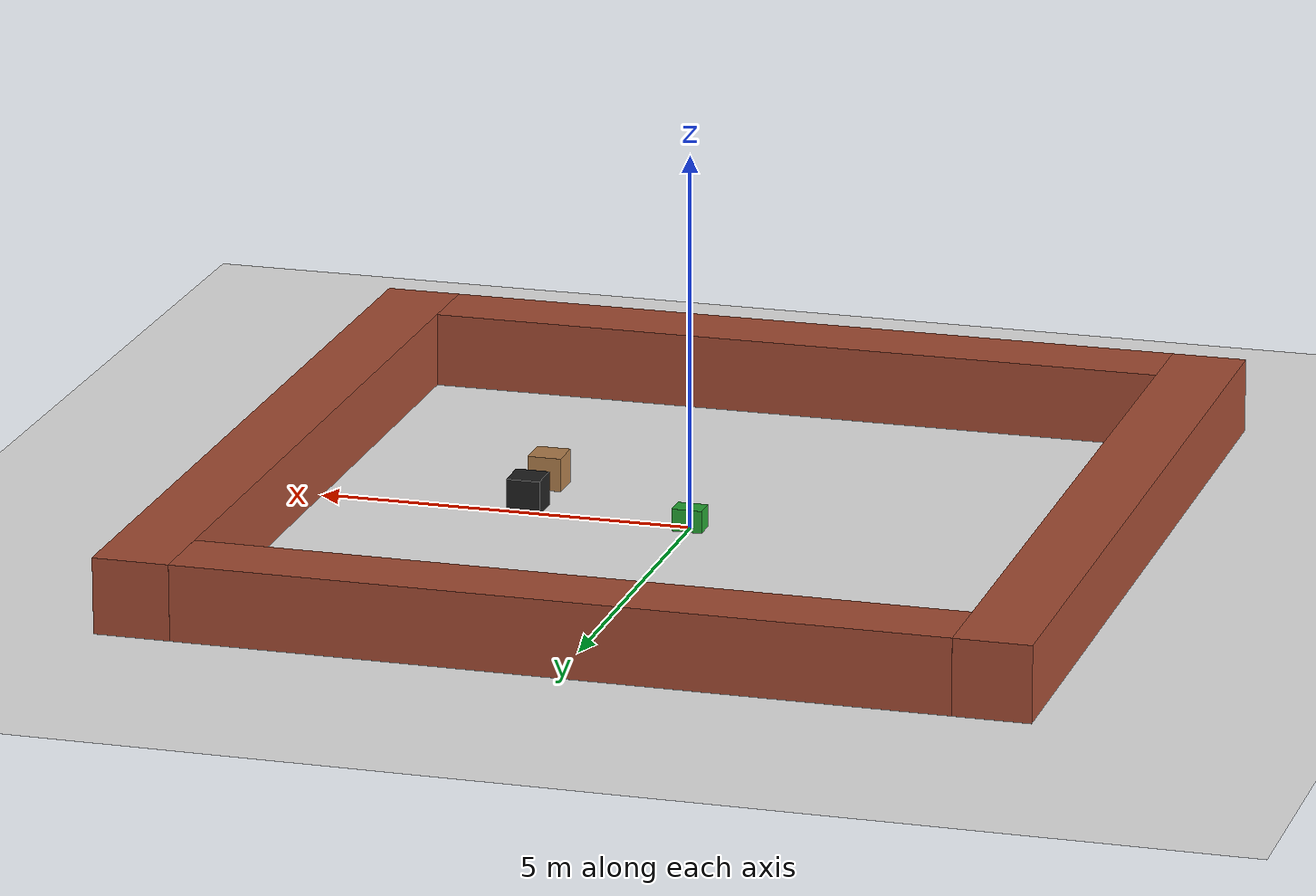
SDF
<sdf version="1.7">
 <world name="default">
  <light name="sun" type="directional">
   <pose>0 0 10 0 -0 0</pose>
   <diffuse>0.8 0.8 0.8 1</diffuse>
   <specular>1 1 1 1</specular>
   <attenuation>
    <range>1000</range>
    <constant>0.9</constant>
    <linear>0.01</linear>
    <quadratic>0.001</quadratic>
   </attenuation>
   <direction>-0.01 -0.01 -1</direction>
   <spot><inner_angle>0</inner_angle><outer_angle>0</outer_angle><falloff>0</falloff></spot>
  </light>
  <model name="ground_plane">
   <static>1</static>
   <link name="link">
    <collision name="collision">
     <geometry><plane><normal>0 0 1</normal><size>100 100</size></plane></geometry>
     <surface>
      <contact><collide_bitmask>65535</collide_bitmask></contact>
      <friction><ode><mu>100</mu><mu2>50</mu2></ode></friction>
     </surface>
    </collision>
    <visual name="visual">
     <cast_shadows>0</cast_shadows>
     <geometry><plane><normal>0 0 1</normal><size>100 100</size></plane></geometry>
     <material>
      <script><uri>file://media/materials/scripts/gazebo.material</uri><name>Gazebo/White</name></script>
     </material>
    </visual>
   </link>
  </model>
  <gravity>0 0 -9.8</gravity>
  <magnetic_field>6e-06 2.3e-05 -4.2e-05</magnetic_field>
  <atmosphere type="adiabatic"/>
  <physics type="ode">
   <max_step_size>0.001</max_step_size>
   <real_time_factor>1</real_time_factor>
   <real_time_update_rate>1000</real_time_update_rate>
  </physics>
  <scene><ambient>0.4 0.4 0.4 1</ambient><background>0.7 0.7 0.7 1</background><shadows>1</shadows></scene>
  <spherical_coordinates>
   <surface_model>EARTH_WGS84</surface_model>
   <latitude_deg>0</latitude_deg>
   <longitude_deg>0</longitude_deg>
   <elevation>0</elevation>
   <heading_deg>0</heading_deg>
  </spherical_coordinates>
  <model name="wall12">
   <link name="link_0">
    <inertial>
     <mass>12</mass>
     <inertia><ixx>145</ixx><ixy>0</ixy><ixz>0</ixz><iyy>145</iyy><iyz>0</iyz><izz>1.66667</izz></inertia>
    </inertial>
    <visual name="visual">
     <geometry><box><size>12 1 1</size></box></geometry>
     <material>
      <lighting>1</lighting>
      <script><uri>file://media/materials/scripts/gazebo.material</uri><name>Gazebo/Bricks</name></script>
      <shader type="pixel"><normal_map>__default__</normal_map></shader>
      <ambient>0.7 0.7 0.7 1</ambient>
      <diffuse>0.7 0.7 0.7 1</diffuse>
      <specular>0.01 0.01 0.01 1</specular>
      <emissive>0 0 0 1</emissive>
     </material>
    </visual>
    <collision name="collision">
     <geometry><box><size>12 1 1</size></box></geometry>
     <surface>
      <friction>
       <ode><mu>1</mu><mu2>1</mu2><fdir1>0 0 0</fdir1><slip1>0</slip1><slip2>0</slip2></ode>
       <torsional>
        <coefficient>1</coefficient>
        <patch_radius>0</patch_radius>
        <surface_radius>0</surface_radius>
        <use_patch_radius>1</use_patch_radius>
        <ode><slip>0</slip></ode>
       </torsional>
      </friction>
      <bounce><restitution_coefficient>0</restitution_coefficient><threshold>1e+06</threshold></bounce>
      <contact>
       <collide_without_contact>0</collide_without_contact>
       <collide_without_contact_bitmask>1</collide_without_contact_bitmask>
       <collide_bitmask>1</collide_bitmask>
       <ode>
        <soft_cfm>0</soft_cfm>
        <soft_erp>0.2</soft_erp>
        <kp>1e+13</kp>
        <kd>1</kd>
        <max_vel>0.01</max_vel>
        <min_depth>0</min_depth>
       </ode>
       <bullet>
        <split_impulse>1</split_impulse>
        <split_impulse_penetration_threshold>-0.01</split_impulse_penetration_threshold>
        <soft_cfm>0</soft_cfm>
        <soft_erp>0.2</soft_erp>
        <kp>1e+13</kp>
        <kd>1</kd>
       </bullet>
      </contact>
     </surface>
    </collision>
   </link>
   <static>0</static>
   <pose>5.50026 -1.8e-05 0.499987 0 -2e-06 1.57075</pose>
  </model>
  <model name="wall12_0">
   <link name="link_0">
    <inertial>
     <mass>12</mass>
     <inertia><ixx>145</ixx><ixy>0</ixy><ixz>0</ixz><iyy>145</iyy><iyz>0</iyz><izz>1.66667</izz></inertia>
    </inertial>
    <visual name="visual">
     <geometry><box><size>12 1 1</size></box></geometry>
     <material>
      <lighting>1</lighting>
      <script><uri>file://media/materials/scripts/gazebo.material</uri><name>Gazebo/Bricks</name></script>
      <shader type="pixel"><normal_map>__default__</normal_map></shader>
      <ambient>0.7 0.7 0.7 1</ambient>
      <diffuse>0.7 0.7 0.7 1</diffuse>
      <specular>0.01 0.01 0.01 1</specular>
      <emissive>0 0 0 1</emissive>
     </material>
    </visual>
    <collision name="collision">
     <geometry><box><size>12 1 1</size></box></geometry>
     <surface>
      <friction>
       <ode><mu>1</mu><mu2>1</mu2><fdir1>0 0 0</fdir1><slip1>0</slip1><slip2>0</slip2></ode>
       <torsional>
        <coefficient>1</coefficient>
        <patch_radius>0</patch_radius>
        <surface_radius>0</surface_radius>
        <use_patch_radius>1</use_patch_radius>
        <ode><slip>0</slip></ode>
       </torsional>
      </friction>
      <bounce><restitution_coefficient>0</restitution_coefficient><threshold>1e+06</threshold></bounce>
      <contact>
       <collide_without_contact>0</collide_without_contact>
       <collide_without_contact_bitmask>1</collide_without_contact_bitmask>
       <collide_bitmask>1</collide_bitmask>
       <ode>
        <soft_cfm>0</soft_cfm>
        <soft_erp>0.2</soft_erp>
        <kp>1e+13</kp>
        <kd>1</kd>
        <max_vel>0.01</max_vel>
        <min_depth>0</min_depth>
       </ode>
       <bullet>
        <split_impulse>1</split_impulse>
        <split_impulse_penetration_threshold>-0.01</split_impulse_penetration_threshold>
        <soft_cfm>0</soft_cfm>
        <soft_erp>0.2</soft_erp>
        <kp>1e+13</kp>
        <kd>1</kd>
       </bullet>
      </contact>
     </surface>
    </collision>
   </link>
   <static>0</static>
   <pose>-5.50034 3.6e-05 0.499987 0 2e-06 1.57085</pose>
  </model>
  <model name="wall10">
   <link name="link_0">
    <inertial>
     <mass>10</mass>
     <inertia><ixx>84.1667</ixx><ixy>0</ixy><ixz>0</ixz><iyy>84.1667</iyy><iyz>0</iyz><izz>1.66667</izz></inertia>
    </inertial>
    <visual name="visual">
     <geometry><box><size>10 1 1</size></box></geometry>
     <material>
      <lighting>1</lighting>
      <script><uri>file://media/materials/scripts/gazebo.material</uri><name>Gazebo/Bricks</name></script>
      <shader type="pixel"><normal_map>__default__</normal_map></shader>
      <ambient>0.7 0.7 0.7 1</ambient>
      <diffuse>0.7 0.7 0.7 1</diffuse>
      <specular>0.01 0.01 0.01 1</specular>
      <emissive>0 0 0 1</emissive>
     </material>
    </visual>
    <collision name="collision">
     <geometry><box><size>10 1 1</size></box></geometry>
     <surface>
      <friction>
       <ode><mu>1</mu><mu2>1</mu2><fdir1>0 0 0</fdir1><slip1>0</slip1><slip2>0</slip2></ode>
       <torsional>
        <coefficient>1</coefficient>
        <patch_radius>0</patch_radius>
        <surface_radius>0</surface_radius>
        <use_patch_radius>1</use_patch_radius>
        <ode><slip>0</slip></ode>
       </torsional>
      </friction>
      <bounce><restitution_coefficient>0</restitution_coefficient><threshold>1e+06</threshold></bounce>
      <contact>
       <collide_without_contact>0</collide_without_contact>
       <collide_without_contact_bitmask>1</collide_without_contact_bitmask>
       <collide_bitmask>1</collide_bitmask>
       <ode>
        <soft_cfm>0</soft_cfm>
        <soft_erp>0.2</soft_erp>
        <kp>1e+13</kp>
        <kd>1</kd>
        <max_vel>0.01</max_vel>
        <min_depth>0</min_depth>
       </ode>
       <bullet>
        <split_impulse>1</split_impulse>
        <split_impulse_penetration_threshold>-0.01</split_impulse_penetration_threshold>
        <soft_cfm>0</soft_cfm>
        <soft_erp>0.2</soft_erp>
        <kp>1e+13</kp>
        <kd>1</kd>
       </bullet>
      </contact>
     </surface>
    </collision>
   </link>
   <static>0</static>
   <pose>-2e-06 5.5 0.499987 -0 -3e-06 -5e-06</pose>
  </model>
  <model name="wall10_0">
   <link name="link_0">
    <inertial>
     <mass>10</mass>
     <inertia><ixx>84.1667</ixx><ixy>0</ixy><ixz>0</ixz><iyy>84.1667</iyy><iyz>0</iyz><izz>1.66667</izz></inertia>
    </inertial>
    <visual name="visual">
     <geometry><box><size>10 1 1</size></box></geometry>
     <material>
      <lighting>1</lighting>
      <script><uri>file://media/materials/scripts/gazebo.material</uri><name>Gazebo/Bricks</name></script>
      <shader type="pixel"><normal_map>__default__</normal_map></shader>
      <ambient>0.7 0.7 0.7 1</ambient>
      <diffuse>0.7 0.7 0.7 1</diffuse>
      <specular>0.01 0.01 0.01 1</specular>
      <emissive>0 0 0 1</emissive>
     </material>
    </visual>
    <collision name="collision">
     <geometry><box><size>10 1 1</size></box></geometry>
     <surface>
      <friction>
       <ode><mu>1</mu><mu2>1</mu2><fdir1>0 0 0</fdir1><slip1>0</slip1><slip2>0</slip2></ode>
       <torsional>
        <coefficient>1</coefficient>
        <patch_radius>0</patch_radius>
        <surface_radius>0</surface_radius>
        <use_patch_radius>1</use_patch_radius>
        <ode><slip>0</slip></ode>
       </torsional>
      </friction>
      <bounce><restitution_coefficient>0</restitution_coefficient><threshold>1e+06</threshold></bounce>
      <contact>
       <collide_without_contact>0</collide_without_contact>
       <collide_without_contact_bitmask>1</collide_without_contact_bitmask>
       <collide_bitmask>1</collide_bitmask>
       <ode>
        <soft_cfm>0</soft_cfm>
        <soft_erp>0.2</soft_erp>
        <kp>1e+13</kp>
        <kd>1</kd>
        <max_vel>0.01</max_vel>
        <min_depth>0</min_depth>
       </ode>
       <bullet>
        <split_impulse>1</split_impulse>
        <split_impulse_penetration_threshold>-0.01</split_impulse_penetration_threshold>
        <soft_cfm>0</soft_cfm>
        <soft_erp>0.2</soft_erp>
        <kp>1e+13</kp>
        <kd>1</kd>
       </bullet>
      </contact>
     </surface>
    </collision>
   </link>
   <static>0</static>
   <pose>9e-06 -5.50002 0.499987 0 -3e-06 -1.2e-05</pose>
  </model>
  <model name="agent">
   <link name="link_0">
    <inertial>
     <mass>2</mass>
     <inertia><ixx>0.0416667</ixx><ixy>0</ixy><ixz>0</ixz><iyy>0.0416667</iyy><iyz>0</iyz><izz>0.03</izz></inertia>
    </inertial>
    <visual name="visual">
     <geometry><box><size>0.4 0.3 0.3</size></box></geometry>
     <material>
      <lighting>1</lighting>
      <script><uri>file://media/materials/scripts/gazebo.material</uri><name>Gazebo/Green</name></script>
      <shader type="pixel"><normal_map>__default__</normal_map></shader>
      <ambient>0.1 0.7 0.1 1</ambient>
      <diffuse>0.1 0.7 0.1 1</diffuse>
      <specular>0.01 0.01 0.01 1</specular>
      <emissive>0 0 0 1</emissive>
     </material>
    </visual>
    <collision name="collision">
     <geometry><box><size>0.4 0.3 0.3</size></box></geometry>
     <surface>
      <friction>
       <ode><mu>1</mu><mu2>1</mu2><fdir1>0 0 0</fdir1><slip1>0</slip1><slip2>0</slip2></ode>
       <torsional>
        <coefficient>1</coefficient>
        <patch_radius>0</patch_radius>
        <surface_radius>0</surface_radius>
        <use_patch_radius>1</use_patch_radius>
        <ode><slip>0</slip></ode>
       </torsional>
      </friction>
      <bounce><restitution_coefficient>0</restitution_coefficient><threshold>1e+06</threshold></bounce>
      <contact>
       <collide_without_contact>0</collide_without_contact>
       <collide_without_contact_bitmask>1</collide_without_contact_bitmask>
       <collide_bitmask>1</collide_bitmask>
       <ode>
        <soft_cfm>0</soft_cfm>
        <soft_erp>0.2</soft_erp>
        <kp>1e+13</kp>
        <kd>1</kd>
        <max_vel>0.01</max_vel>
        <min_depth>0</min_depth>
       </ode>
       <bullet>
        <split_impulse>1</split_impulse>
        <split_impulse_penetration_threshold>-0.01</split_impulse_penetration_threshold>
        <soft_cfm>0</soft_cfm>
        <soft_erp>0.2</soft_erp>
        <kp>1e+13</kp>
        <kd>1</kd>
       </bullet>
      </contact>
     </surface>
    </collision>
   </link>
   <static>0</static>
   <pose>0 -0 0.15 0 -0 0</pose>
  </model>
  <model name="obstacle">
   <link name="link_0">
    <inertial>
     <mass>0.091125</mass>
     <inertia>
      <ixx>0.00307547</ixx>
      <ixy>0</ixy>
      <ixz>0</ixz>
      <iyy>0.00307547</iyy>
      <iyz>0</iyz>
      <izz>0.00307547</izz>
     </inertia>
    </inertial>
    <visual name="visual">
     <geometry><box><size>0.45 0.45 0.45</size></box></geometry>
     <material>
      <lighting>1</lighting>
      <script><uri>file://media/materials/scripts/gazebo.material</uri><name>Gazebo/Black</name></script>
      <shader type="pixel"><normal_map>__default__</normal_map></shader>
      <ambient>0 0 0 1</ambient>
      <diffuse>0 0 0 1</diffuse>
      <specular>0.01 0.01 0.01 1</specular>
      <emissive>0 0 0 1</emissive>
     </material>
    </visual>
    <collision name="collision">
     <geometry><box><size>0.45 0.45 0.45</size></box></geometry>
     <surface>
      <friction>
       <ode><mu>1</mu><mu2>1</mu2><fdir1>0 0 0</fdir1><slip1>0</slip1><slip2>0</slip2></ode>
       <torsional>
        <coefficient>1</coefficient>
        <patch_radius>0</patch_radius>
        <surface_radius>0</surface_radius>
        <use_patch_radius>1</use_patch_radius>
        <ode><slip>0</slip></ode>
       </torsional>
      </friction>
      <bounce><restitution_coefficient>0</restitution_coefficient><threshold>1e+06</threshold></bounce>
      <contact>
       <collide_without_contact>0</collide_without_contact>
       <collide_without_contact_bitmask>1</collide_without_contact_bitmask>
       <collide_bitmask>1</collide_bitmask>
       <ode>
        <soft_cfm>0</soft_cfm>
        <soft_erp>0.2</soft_erp>
        <kp>1e+13</kp>
        <kd>1</kd>
        <max_vel>0.01</max_vel>
        <min_depth>0</min_depth>
       </ode>
       <bullet>
        <split_impulse>1</split_impulse>
        <split_impulse_penetration_threshold>-0.01</split_impulse_penetration_threshold>
        <soft_cfm>0</soft_cfm>
        <soft_erp>0.2</soft_erp>
        <kp>1e+13</kp>
        <kd>1</kd>
       </bullet>
      </contact>
     </surface>
    </collision>
   </link>
   <static>0</static>
   <pose>2.25467 -0.232996 0.224995 0 -2.2e-05 0</pose>
  </model>
  <model name="good">
   <link name="link_0">
    <inertial>
     <mass>0.091125</mass>
     <inertia>
      <ixx>0.00307547</ixx>
      <ixy>0</ixy>
      <ixz>0</ixz>
      <iyy>0.00307547</iyy>
      <iyz>0</iyz>
      <izz>0.00307547</izz>
     </inertia>
    </inertial>
    <visual name="visual">
     <geometry><box><size>0.45 0.45 0.45</size></box></geometry>
     <material>
      <lighting>1</lighting>
      <script><uri>file://media/materials/scripts/gazebo.material</uri><name>Gazebo/Wood</name></script>
      <shader type="pixel"><normal_map>__default__</normal_map></shader>
      <ambient>0.8 0.8 0.8 1</ambient>
      <diffuse>0.8 0.8 0.8 1</diffuse>
      <specular>0.01 0.01 0.01 1</specular>
      <emissive>0 0 0 1</emissive>
     </material>
    </visual>
    <collision name="collision">
     <geometry><box><size>0.45 0.45 0.45</size></box></geometry>
     <surface>
      <friction>
       <ode><mu>1</mu><mu2>1</mu2><fdir1>0 0 0</fdir1><slip1>0</slip1><slip2>0</slip2></ode>
       <torsional>
        <coefficient>1</coefficient>
        <patch_radius>0</patch_radius>
        <surface_radius>0</surface_radius>
        <use_patch_radius>1</use_patch_radius>
        <ode><slip>0</slip></ode>
       </torsional>
      </friction>
      <bounce><restitution_coefficient>0</restitution_coefficient><threshold>1e+06</threshold></bounce>
      <contact>
       <collide_without_contact>0</collide_without_contact>
       <collide_without_contact_bitmask>1</collide_without_contact_bitmask>
       <collide_bitmask>1</collide_bitmask>
       <ode>
        <soft_cfm>0</soft_cfm>
        <soft_erp>0.2</soft_erp>
        <kp>1e+13</kp>
        <kd>1</kd>
        <max_vel>0.01</max_vel>
        <min_depth>0</min_depth>
       </ode>
       <bullet>
        <split_impulse>1</split_impulse>
        <split_impulse_penetration_threshold>-0.01</split_impulse_penetration_threshold>
        <soft_cfm>0</soft_cfm>
        <soft_erp>0.2</soft_erp>
        <kp>1e+13</kp>
        <kd>1</kd>
       </bullet>
      </contact>
     </surface>
    </collision>
   </link>
   <static>0</static>
   <pose>2.26792 -1.22633 0.224995 0 2.2e-05 0</pose>
  </model>
 </world>
</sdf>
